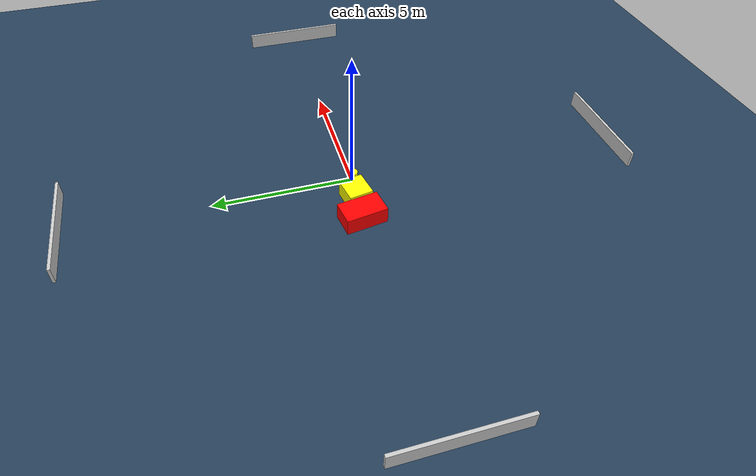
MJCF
<?xml version="1.0" ?>
<mujoco model="generated_environment">
  <option timestep="0.01" integrator="RK4" cone="elliptic"/>
  <default>
    <geom density="1"/>
  </default>
  <asset>
    <texture builtin="gradient" height="3072" name="skybox" rgb1="0.3 0.5 0.7" rgb2="0 0 0" type="skybox" width="512"/>
    <texture builtin="checker" height="300" name="groundplane" rgb1="0.2 0.3 0.4" rgb2="0.1 0.2 0.3" type="2d" width="300"/>
    <material name="groundplane" reflectance="0.2" texrepeat="5 5" texture="groundplane"/>
  </asset>
  <worldbody>
    <light dir="0 0 -1" directional="true" pos="0 0 1.5"/>
    <geom condim="3" friction="0.5 0.005 0.001" material="groundplane" name="floor" pos="0 0 0" size="0 0 0.05" type="plane"/>
    <body name="walls">
      <geom name="wall_1" condim="4" pos="-10.0 0.0 0.3" rgba="0.800000011920929 0.800000011920929 0.800000011920929 1.0" size="0.05 2.0 0.3" type="box"/>
      <geom name="wall_2" condim="4" pos="10.0 0.0 0.3" rgba="0.800000011920929 0.800000011920929 0.800000011920929 1.0" size="0.05 2.0 0.3" type="box"/>
      <geom name="wall_3" condim="4" pos="0.0 -10.0 0.3" rgba="0.800000011920929 0.800000011920929 0.800000011920929 1.0" size="2.0 0.05 0.3" type="box"/>
      <geom name="wall_4" condim="4" pos="0.0 10.0 0.3" rgba="0.800000011920929 0.800000011920929 0.800000011920929 1.0" size="2.0 0.05 0.3" type="box"/>
    </body>
    <body name="robot">
      <joint name="joint_x" type="slide" pos="0 0 0" axis="1 0 0"/>
      <joint name="joint_y" type="slide" pos="0 0 0" axis="0 1 0"/>
      <geom name="robot" type="cylinder" pos="0.0 0.0 0.2" size="0.2 0.2 0.0" mass="5.0" friction="1.0 0.005 0.0001" condim="4" rgba="1.0 1.0 0.0 1.0"/>
    </body>
    <body name="obstacle_1_movable">
      <geom name="obstacle_1_movable" condim="4" pos="-0.9656572476802815 0.1315330196921256 0.3" euler="0 0 100.36748938117344" friction="0.0 0.005 0.001" rgba="1.0 1.0 0.0 1.0" size="0.424677896598214 0.4633129201249631 0.3" type="box" mass="0.1"/>
      <joint type="free"/>
    </body>
    <body name="obstacle_2_static">
      <geom name="obstacle_2_static" condim="4" pos="-1.964164910338203 0.18736794902968626 0.3" euler="0 0 98.8438426163922" friction="0.0 0.005 0.001" rgba="1.0 0.0 0.0 1.0" size="0.7335728587265347 0.4396391893759003 0.3" type="box"/>
    </body>
  </worldbody>
  <actuator>
    <motor name="actuator_x" joint="joint_x" gear="1" ctrlrange="-1 1"/>
    <motor name="actuator_y" joint="joint_y" gear="1" ctrlrange="-1 1"/>
  </actuator>
</mujoco>
